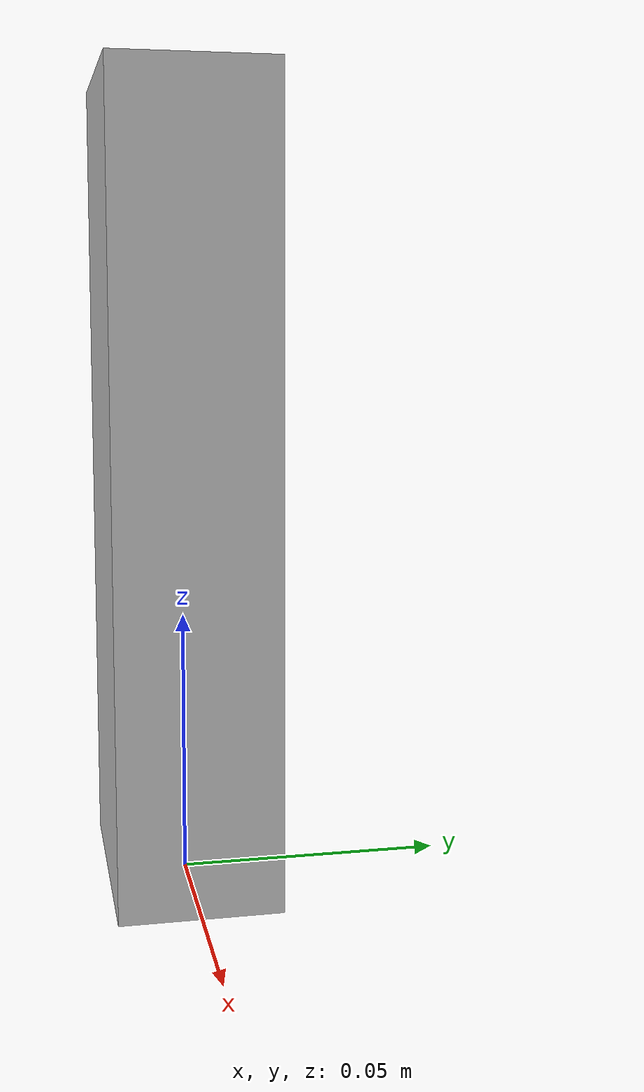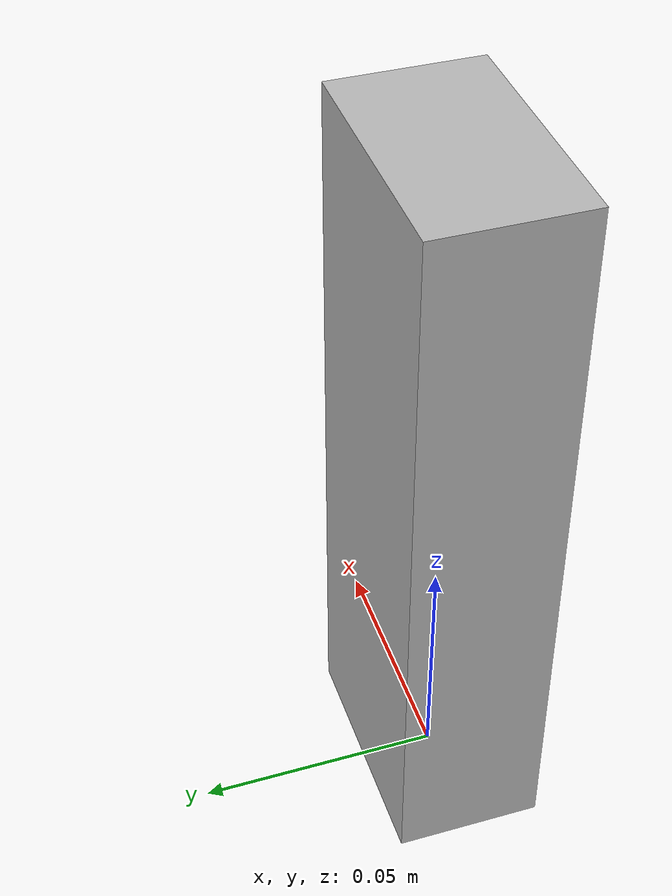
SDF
<?xml version='1.0'?>
<sdf version='1.7'>
  <model name='Caisse_noisettes'>
    <allow_auto_disable>1</allow_auto_disable>
    <static>1</static>
    <plugin filename="gz-sim-label-system" name="gz::sim::systems::Label">
        <label>11</label>
    </plugin>
    <link name='link_0'>
			<gravity>0</gravity>
      <inertial>
        <pose>0 0 0.02 0 0 0</pose>
        <mass>0.025</mass>
        <inertia>
          <ixx>2.5e-5</ixx>
          <ixy>0</ixy>
          <ixz>0</ixz>
          <iyy>2.5e-5</iyy>
          <iyz>0</iyz>
          <izz>8e-6</izz>
        </inertia>
      </inertial>
      <pose>0 0 0 0 0 0</pose>
      <visual name='visual'>
        <pose>0 0 0 0 -0 0</pose>
        <geometry>
          <mesh>
            <uri>CaisseNoisette.dae</uri>
            <scale>1.0 1.0 1.0</scale>
          </mesh>
        </geometry>
        <transparency>0</transparency>
        <cast_shadows>1</cast_shadows>
      </visual>

      <collision name='collision'>
        <laser_retro>0</laser_retro>
        <max_contacts>3</max_contacts>
        <pose>0 0 0.075 0 -0 0</pose>
        <geometry>
          <box>
            <size>0.05 0.03 0.15</size>
          </box>
        </geometry>
        <surface>
          <friction>
            <ode>
              <mu>0.9</mu>
              <mu2>0.9</mu2>
            </ode>
          </friction>

          <contact>
            <ode>
              <soft_cfm>0</soft_cfm>
              <soft_erp>0.2</soft_erp>
              <kp>1e1</kp>
              <kd>1e9</kd>
              <max_vel>0.01</max_vel>
              <min_depth>0.001</min_depth>
            </ode>
          </contact>
        </surface>
      </collision>
    </link>
    <pose>0 0 0 0 0 0</pose>
  </model>
</sdf>
